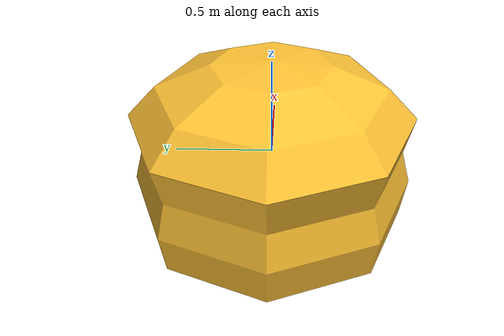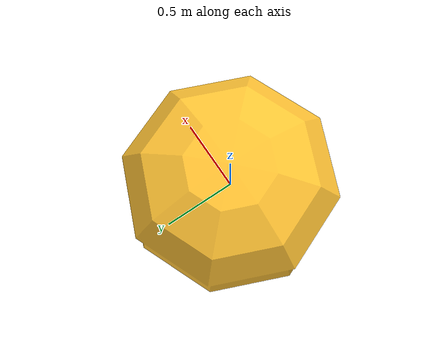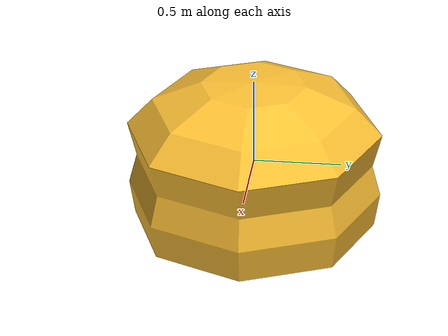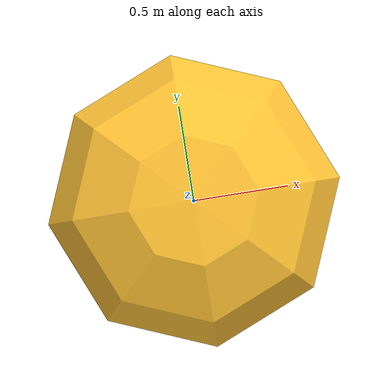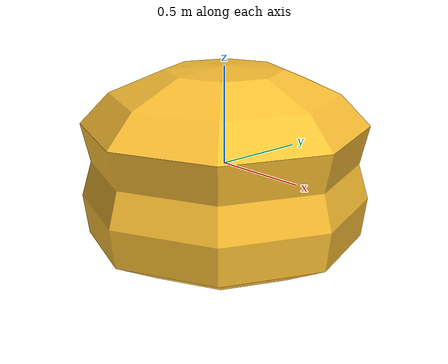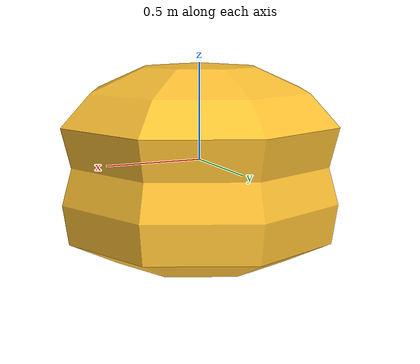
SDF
<?xml version="1.0"?>
<sdf version="1.6">
  <model name="f250_navigation_buoy_collision_mesh">
    <static>true</static>
    <link name="link">
      <collision name="navigation_buoy_collision_shell">
        <geometry>
          <mesh>
            <uri>model://f250_navigation_buoy_collision_mesh/meshes/navigation_buoy_collision.obj</uri>
          </mesh>
        </geometry>
      </collision>
      <visual name="navigation_buoy_visual_shell">
        <geometry>
          <mesh>
            <uri>model://f250_navigation_buoy_collision_mesh/meshes/navigation_buoy_collision.obj</uri>
          </mesh>
        </geometry>
        <material>
          <ambient>1.0 0.76 0.2 1.0</ambient>
          <diffuse>1.0 0.76 0.2 1.0</diffuse>
          <specular>0.12 0.12 0.12 1.0</specular>
        </material>
      </visual>
    </link>
  </model>
</sdf>
